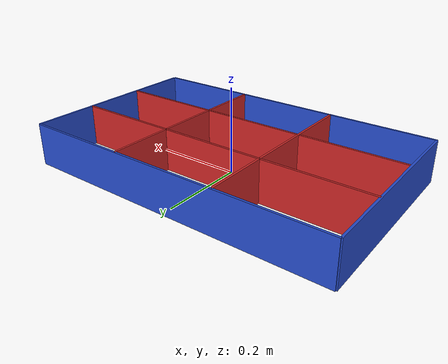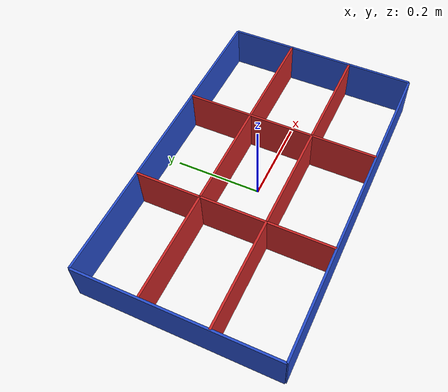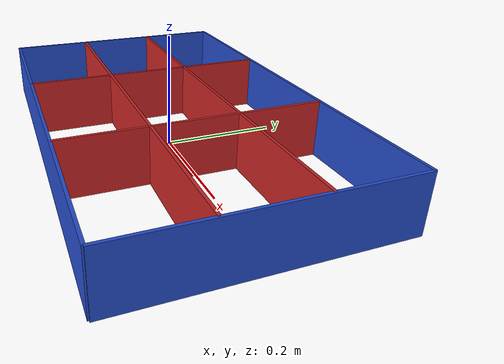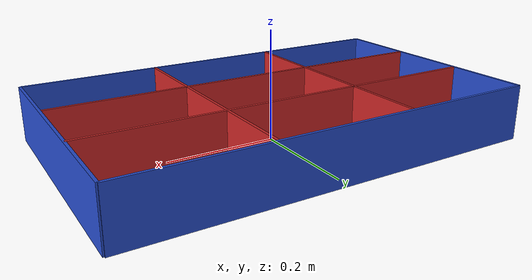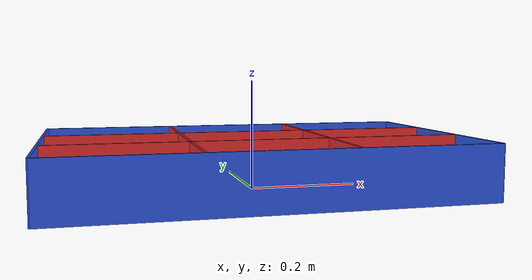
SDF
<?xml version='1.0'?>
<sdf version='1.6'>
  <model name='grid_bins'>
    <static>true</static>
    <link name='link'>
      <pose>0 0 0 0 0 0</pose>
      <inertial>
        <mass>1.0</mass>
      </inertial>

      <!-- PARAMETERS -->
      <!-- Center Lane Width: 0.15m -->
      <!-- Side Lane Width: 0.15m -->
      <!-- Total Width (Y): 0.45m -->
      <!-- Total Length (X): 0.75m (3 sections of 0.25m) -->
      <!-- Height: 0.10m -->

      <!-- LONGITUDINAL WALLS (Run along X) -->

      <!-- Outer Left Wall (Y = +0.225) -->
      <visual name='wall_left_visual'>
        <pose>0 0.225 0.05 0 0 0</pose>
        <geometry><box><size>0.75 0.005 0.10</size></box></geometry>
        <material><script><uri>file://media/materials/scripts/gazebo.material</uri><name>Gazebo/Blue</name></script></material>
      </visual>
      <collision name='wall_left_collision'>
        <pose>0 0.225 0.05 0 0 0</pose>
        <geometry><box><size>0.75 0.005 0.10</size></box></geometry>
      </collision>

      <!-- Inner Left Divider (Y = +0.075) -->
      <visual name='div_left_visual'>
        <pose>0 0.075 0.05 0 0 0</pose>
        <geometry><box><size>0.75 0.005 0.10</size></box></geometry>
        <material><script><uri>file://media/materials/scripts/gazebo.material</uri><name>Gazebo/Red</name></script></material>
      </visual>
      <collision name='div_left_collision'>
        <pose>0 0.075 0.05 0 0 0</pose>
        <geometry><box><size>0.75 0.005 0.10</size></box></geometry>
      </collision>

      <!-- Inner Right Divider (Y = -0.075) -->
      <visual name='div_right_visual'>
        <pose>0 -0.075 0.05 0 0 0</pose>
        <geometry><box><size>0.75 0.005 0.10</size></box></geometry>
        <material><script><uri>file://media/materials/scripts/gazebo.material</uri><name>Gazebo/Red</name></script></material>
      </visual>
      <collision name='div_right_collision'>
        <pose>0 -0.075 0.05 0 0 0</pose>
        <geometry><box><size>0.75 0.005 0.10</size></box></geometry>
      </collision>

      <!-- Outer Right Wall (Y = -0.225) -->
      <visual name='wall_right_visual'>
        <pose>0 -0.225 0.05 0 0 0</pose>
        <geometry><box><size>0.75 0.005 0.10</size></box></geometry>
        <material><script><uri>file://media/materials/scripts/gazebo.material</uri><name>Gazebo/Blue</name></script></material>
      </visual>
      <collision name='wall_right_collision'>
        <pose>0 -0.225 0.05 0 0 0</pose>
        <geometry><box><size>0.75 0.005 0.10</size></box></geometry>
      </collision>

      <!-- TRANSVERSE WALLS (Run along Y) -->

      <!-- Back Wall (X = -0.375) -->
      <visual name='wall_back_visual'>
        <pose>-0.375 0 0.05 0 0 0</pose>
        <geometry><box><size>0.005 0.45 0.10</size></box></geometry>
        <material><script><uri>file://media/materials/scripts/gazebo.material</uri><name>Gazebo/Blue</name></script></material>
      </visual>
      <collision name='wall_back_collision'>
        <pose>-0.375 0 0.05 0 0 0</pose>
        <geometry><box><size>0.005 0.45 0.10</size></box></geometry>
      </collision>

      <!-- Divider 1 (X = -0.125) -->
      <visual name='trans_1_visual'>
        <pose>-0.125 0 0.05 0 0 0</pose>
        <geometry><box><size>0.005 0.45 0.10</size></box></geometry>
        <material><script><uri>file://media/materials/scripts/gazebo.material</uri><name>Gazebo/Red</name></script></material>
      </visual>
      <collision name='trans_1_collision'>
        <pose>-0.125 0 0.05 0 0 0</pose>
        <geometry><box><size>0.005 0.45 0.10</size></box></geometry>
      </collision>

      <!-- Divider 2 (X = +0.125) -->
      <visual name='trans_2_visual'>
        <pose>0.125 0 0.05 0 0 0</pose>
        <geometry><box><size>0.005 0.45 0.10</size></box></geometry>
        <material><script><uri>file://media/materials/scripts/gazebo.material</uri><name>Gazebo/Red</name></script></material>
      </visual>
      <collision name='trans_2_collision'>
        <pose>0.125 0 0.05 0 0 0</pose>
        <geometry><box><size>0.005 0.45 0.10</size></box></geometry>
      </collision>

      <!-- Front Wall (X = +0.375) -->
      <visual name='wall_front_visual'>
        <pose>0.375 0 0.05 0 0 0</pose>
        <geometry><box><size>0.005 0.45 0.10</size></box></geometry>
        <material><script><uri>file://media/materials/scripts/gazebo.material</uri><name>Gazebo/Blue</name></script></material>
      </visual>
      <collision name='wall_front_collision'>
        <pose>0.375 0 0.05 0 0 0</pose>
        <geometry><box><size>0.005 0.45 0.10</size></box></geometry>
      </collision>

    </link>
  </model>
</sdf>
